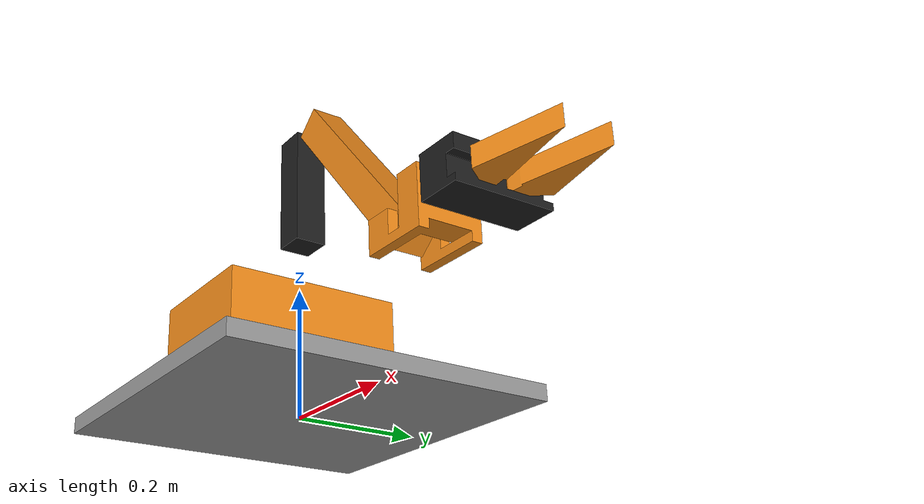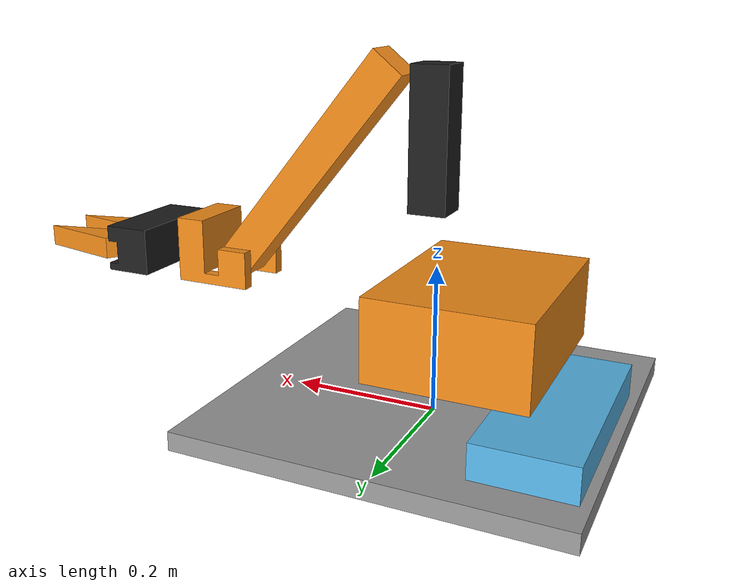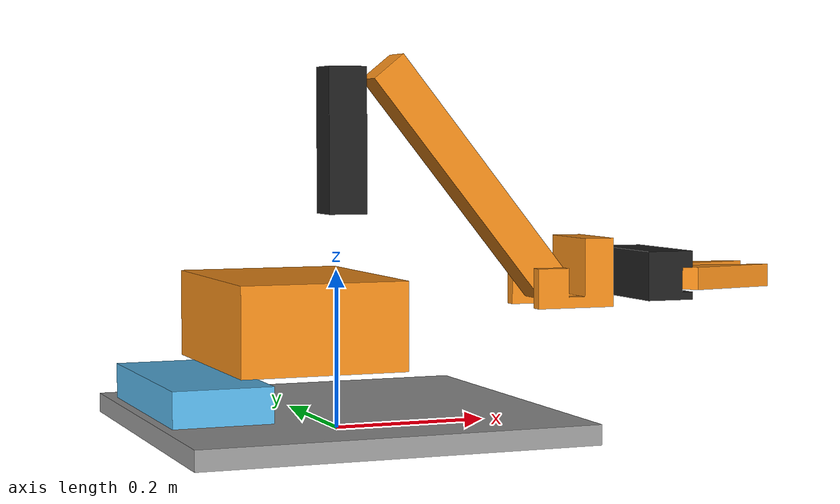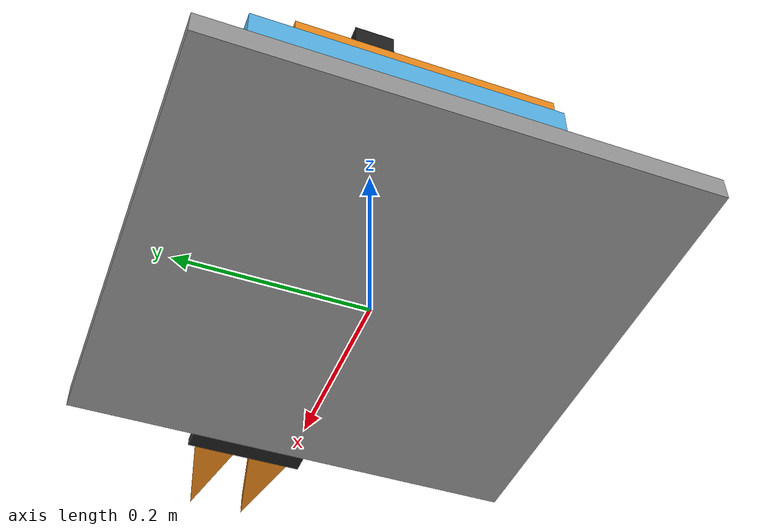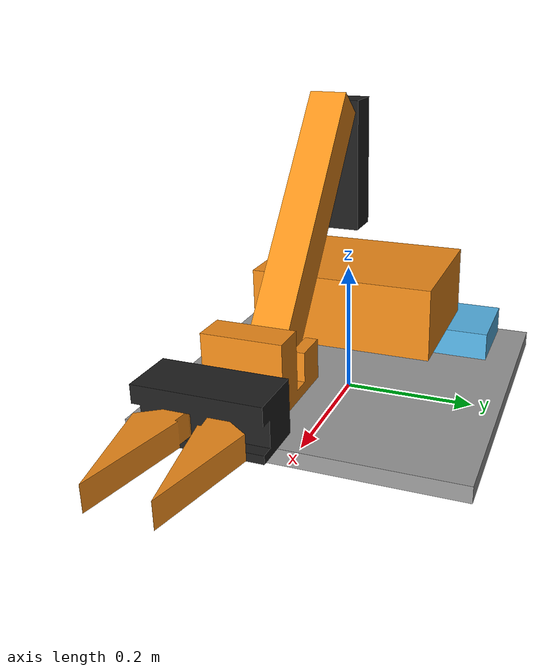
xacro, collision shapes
<robot xmlns:xacro="http://www.ros.org/wiki/xacro" name="sara">
	<!-- Import all Gazebo-customization elements, including Gazebo colors -->
	<xacro:include filename="$(find sara_description)/urdf/sara.gazebo"/>
	<!-- Import Rviz colors -->
	<!-- Used for fixing robot to Gazebo 'base_link' -->
	<link name="world"/>
	<joint name="fixed" type="fixed">
		<parent link="world"/>
		<child link="base"/>
	</joint>
	<!--                 LINKS                    -->
	<link name="base">
		<visual>
			<geometry>
				<mesh filename="package://sara_description/meshes/base/base.dae" scale="0.001 0.001 0.001"/>
			</geometry>
			<origin xyz="0 0 0"/>
		</visual>
		<collision>
			<geometry>
				<box size="0.5 0.5 0.025"/>
			</geometry>
			<origin xyz="0 0 0.0125"/>
		</collision>
		<inertial>
			<origin rpy="0 0 0" xyz="-0.03885 0.01799 0.02857"/>
			<mass value="5.355"/>
			<inertia ixx="0.07012" ixy="0.01315" ixz="0.003883" iyy="0.08717" iyz="-0.001922" izz="0.1535"/>
		</inertial>
	</link>
	<link name="link1">
		<visual>
			<geometry>
				<mesh filename="package://sara_description/meshes/link1/link1.dae" scale="0.001 0.001 0.001"/>
			</geometry>
			<origin xyz="0 0 0"/>
		</visual>
		<collision>
			<geometry>
				<box size="0.21 0.28 0.11"/>
			</geometry>
			<origin xyz="-0.06 0 0.14"/>
		</collision>
		<inertial>
			<origin rpy="0 0 0" xyz="-0.01183 -0.04885 0.17499"/>
			<mass value="8.178"/>
			<inertia ixx="0.03772" ixy="0.01084" ixz="0.01433" iyy="0.0473" iyz="-0.008177" izz="0.05586"/>
		</inertial>
	</link>
	<link name="link2">
		<visual>
			<geometry>
				<mesh filename="package://sara_description/meshes/link2/link2.dae" scale="0.001 0.001 0.001"/>
			</geometry>
			<origin xyz="0 0 0"/>
		</visual>
		<collision>
			<geometry>
				<box size="0.185 0.05 0.05"/>
			</geometry>
			<origin xyz="0.1325 0 0"/>
		</collision>
		<inertial>
			<origin rpy="0 0 0" xyz="0.1128 0 0.04572"/>
			<mass value="3.441"/>
			<inertia ixx="0.005329" ixy="-4.82256e-7" ixz="-0.0003582" iyy="0.01631" iyz="-0.000106414" izz="0.01304"/>
		</inertial>
	</link>
	<link name="link3">
		<visual>
			<geometry>
				<mesh filename="package://sara_description/meshes/link3/link3.dae" scale="0.001 0.001 0.001"/>
			</geometry>
			<origin xyz="0 0 0"/>
		</visual>
		<collision>
			<geometry>
				<box size="0.366 0.05 0.05"/>
			</geometry>
			<origin xyz="0.22 0 0.02" rpy="0 0.1047 0"/>
		</collision>
		<inertial>
			<origin rpy="0 0 0" xyz="0.17324 0 0.01793"/>
			<mass value="1.807"/>
			<inertia ixx="0.001707" ixy="3.38812e-7" ixz="0.001463" iyy="0.04448" iyz="-4.2067e-8" izz="0.04483"/>
		</inertial>
	</link>
	<link name="link4">
		<visual>
			<geometry>
				<mesh filename="package://sara_description/meshes/link4/link4.dae" scale="0.001 0.001 0.001"/>
			</geometry>
			<origin xyz="0 0 0"/>
		</visual>
		<collision>
			<geometry>
				<mesh filename="package://sara_description/meshes/link4/link4coll.stl" scale="0.001 0.001 0.001"/>
			</geometry>
			<origin xyz="0 0 0"/>
		</collision>
		<inertial>
			<origin rpy="0 0 0" xyz="0.04539 0.00733 0.00434"/>
			<mass value="1.045"/>
			<inertia ixx="0.001296" ixy="-0.0001774" ixz="-0.0002992" iyy="0.001766" iyz="-0.0001967" izz="0.002051"/>
		</inertial>
	</link>
	<link name="link5">
		<visual>
			<geometry>
				<mesh filename="package://sara_description/meshes/link5/link5small.dae" scale="0.001 0.001 0.001"/>
			</geometry>
			<origin xyz="0 0 0"/>
		</visual>
		<collision>
			<geometry>
				<mesh filename="package://sara_description/meshes/link5/link5collsmall.stl" scale="0.001 0.001 0.001"/>
			</geometry>
			<origin xyz="0 0 0"/>
		</collision>
		<inertial>
			<origin rpy="0 0 0" xyz="-0.017 0 0.003142"/>
			<mass value="0.8578"/>
			<inertia ixx="0.001494" ixy="-0.00000147219" ixz="-0.00002513" iyy="0.001114" iyz="-0.00000145665" izz="0.002344"/>
		</inertial>
	</link>
	<link name="link6">
		<visual>
			<geometry>
				<mesh filename="package://sara_description/meshes/link6/link6.dae" scale="0.001 0.001 0.001"/>
			</geometry>
			<origin xyz="0 0 0"/>
		</visual>
		<collision>
			<geometry>
				<mesh filename="package://sara_description/meshes/link6/link6coll.stl" scale="0.001 0.001 0.001"/>
			</geometry>
			<origin xyz="0 0 0"/>
		</collision>
		<inertial>
			<origin rpy="0 0 0" xyz="0.035 -0.017 0"/>
			<mass value="0.075"/>
			<inertia ixx="0.00001701" ixy="0.00000417082" ixz="-1.19483e-7" iyy="0.00008084" iyz="-1.19911e-7" izz="0.00008737"/>
		</inertial>
	</link>
	<link name="link7">
		<visual>
			<geometry>
				<mesh filename="package://sara_description/meshes/link7/link7.dae" scale="0.001 0.001 0.001"/>
			</geometry>
			<origin xyz="0 0 0"/>
		</visual>
		<collision>
			<geometry>
				<mesh filename="package://sara_description/meshes/link7/link7coll.stl" scale="0.001 0.001 0.001"/>
			</geometry>
			<origin xyz="0 0 0"/>
		</collision>
		<inertial>
			<origin rpy="0 0 0" xyz="0.035 0.017 0"/>
			<mass value="0.075"/>
			<inertia ixx="0.00001701" ixy="-0.00000417082" ixz="1.19483e-7" iyy="0.00008084" iyz="-1.19911e-7" izz="0.00008737"/>
		</inertial>
	</link>
	<!--         ADDITIONAL COLLISION             -->
	<link name="base_power_supply">
		<collision>
			<geometry>
				<box size=".125 .30 .05"/>
			</geometry>
			<origin xyz="-.175 .05 .045"/>
		</collision>
	</link>
	<joint name="base_add1" type="fixed">
		<parent link="base"/>
		<child link="base_power_supply"/>
	</joint>
	<!--                 JOINTS                   -->
	<joint name="joint1" type="continuous">
		<parent link="base"/>
		<child link="link1"/>
		<origin xyz="0 0 0"/>
		<axis xyz="0 0 1"/>
		<limit effort="1000.0" velocity="0.5"/>
	</joint>
	<joint name="joint2" type="revolute">
		<parent link="link1"/>
		<child link="link2"/>
		<origin xyz="0.0075 0 0.2311" rpy="0 -1.57 0"/>
		<axis xyz="0 1 0"/>
		<limit effort="1000.0" lower="-0.4" upper="1.8" velocity="0.5"/>
	</joint>
	<joint name="joint3" type="revolute">
		<parent link="link2"/>
		<child link="link3"/>
		<origin xyz="0.225 0 0" rpy="0 2.356 0"/>
		<axis xyz="0 1 0"/>
		<limit effort="1000.0" lower="-3.556" upper="0.594" velocity="0.5"/>
	</joint>
	<joint name="joint4" type="revolute">
		<parent link="link3"/>
		<child link="link4"/>
		<origin xyz=".386 0 0" rpy="0 -0.785 0"/>
		<axis xyz="0 1 0"/>
		<limit effort="1000.0" lower="-0.62" upper="2.3" velocity="0.5"/>
	</joint>
	<joint name="joint5" type="revolute">
		<parent link="link4"/>
		<child link="link5"/>
		<origin xyz="0.146 0 -0.003"/>
		<axis xyz="1 0 0"/>
		<limit effort="1000.0" lower="-3.14" upper="3.14" velocity="0.5"/>
	</joint>
	<joint name="joint6" type="revolute">
		<parent link="link5"/>
		<child link="link6"/>
		<origin xyz="0.035 -0.018 0"/>
		<axis xyz="0 0 -1"/>
		<limit effort="1000.0" lower="-0.25" upper="0.40" velocity="0.5"/>
	</joint>
	<joint name="joint7" type="revolute">
		<parent link="link5"/>
		<child link="link7"/>
		<origin xyz="0.035 0.018 0"/>
		<axis xyz="0 0 1"/>
		<mimic joint="joint6" multiplier="1"/>
		<limit effort="1000.0" lower="-0.40" upper="0.25" velocity="0.5"/>
	</joint>
	<!--              TRANSMISSIONS               -->
	<transmission name="tran1">
		<type>transmission_interface/SimpleTransmission</type>
		<joint name="joint1">
			<hardwareInterface>hardware_interface/PositionJointInterface</hardwareInterface>
		</joint>
		<actuator name="motor1">
			<hardwareInterface>hardware_interface/PositionJointInterface</hardwareInterface>
			<mechanicalReduction>1</mechanicalReduction>
		</actuator>
	</transmission>
	<transmission name="tran2">
		<type>transmission_interface/SimpleTransmission</type>
		<joint name="joint2">
			<hardwareInterface>hardware_interface/PositionJointInterface</hardwareInterface>
		</joint>
		<actuator name="motor2">
			<hardwareInterface>hardware_interface/PositionJointInterface</hardwareInterface>
			<mechanicalReduction>1</mechanicalReduction>
		</actuator>
	</transmission>
	<transmission name="tran3">
		<type>transmission_interface/SimpleTransmission</type>
		<joint name="joint3">
			<hardwareInterface>hardware_interface/PositionJointInterface</hardwareInterface>
		</joint>
		<actuator name="motor3">
			<hardwareInterface>hardware_interface/PositionJointInterface</hardwareInterface>
			<mechanicalReduction>1</mechanicalReduction>
		</actuator>
	</transmission>
	<transmission name="tran4">
		<type>transmission_interface/SimpleTransmission</type>
		<joint name="joint4">
			<hardwareInterface>hardware_interface/PositionJointInterface</hardwareInterface>
		</joint>
		<actuator name="motor4">
			<hardwareInterface>hardware_interface/PositionJointInterface</hardwareInterface>
			<mechanicalReduction>1</mechanicalReduction>
		</actuator>
	</transmission>
	<transmission name="tran5">
		<type>transmission_interface/SimpleTransmission</type>
		<joint name="joint5">
			<hardwareInterface>hardware_interface/PositionJointInterface</hardwareInterface>
		</joint>
		<actuator name="motor5">
			<hardwareInterface>hardware_interface/PositionJointInterface</hardwareInterface>
			<mechanicalReduction>1</mechanicalReduction>
		</actuator>
	</transmission>
	<transmission name="tran6">
		<type>transmission_interface/SimpleTransmission</type>
		<joint name="joint6">
			<hardwareInterface>hardware_interface/PositionJointInterface</hardwareInterface>
		</joint>
		<actuator name="motor6">
			<hardwareInterface>hardware_interface/PositionJointInterface</hardwareInterface>
			<mechanicalReduction>1</mechanicalReduction>
		</actuator>
	</transmission>
	<transmission name="tran7">
		<type>transmission_interface/SimpleTransmission</type>
		<joint name="joint7">
			<hardwareInterface>hardware_interface/PositionJointInterface</hardwareInterface>
		</joint>
		<actuator name="motor7">
			<hardwareInterface>hardware_interface/PositionJointInterface</hardwareInterface>
			<mechanicalReduction>1</mechanicalReduction>
		</actuator>
	</transmission>
</robot>
